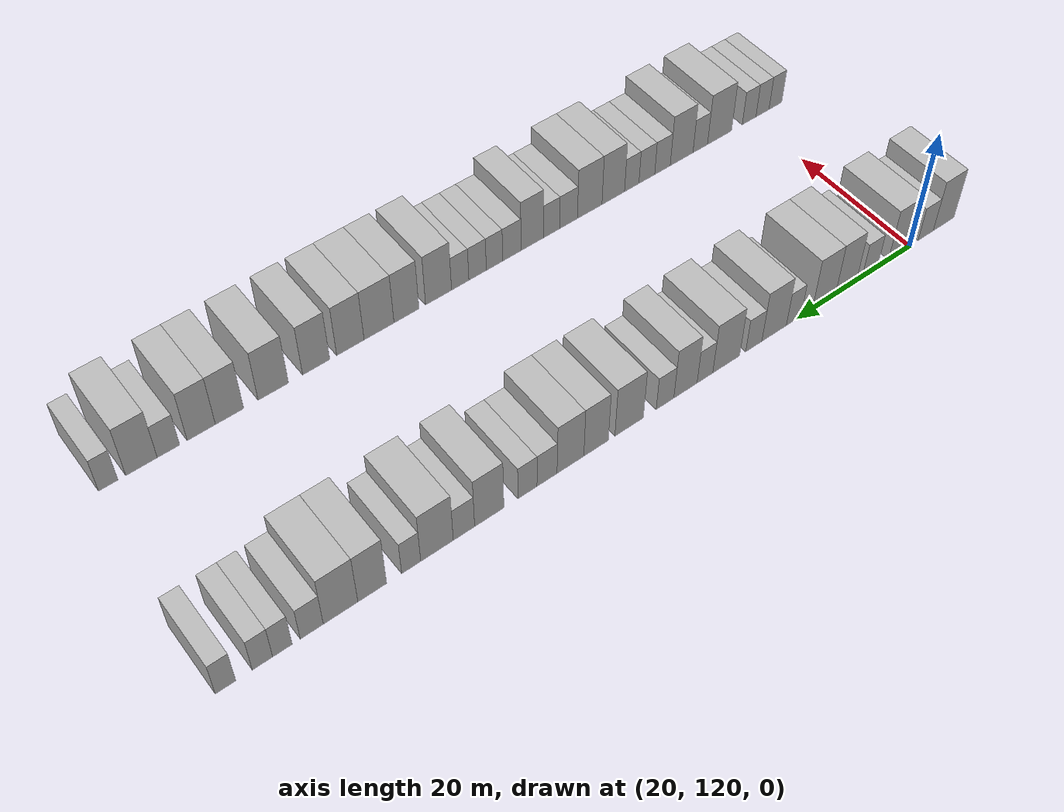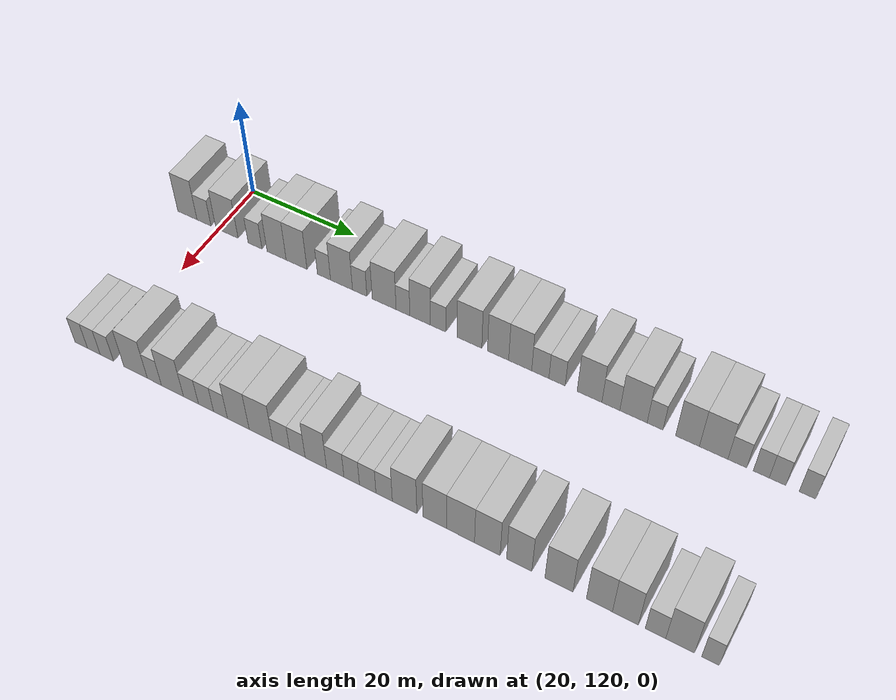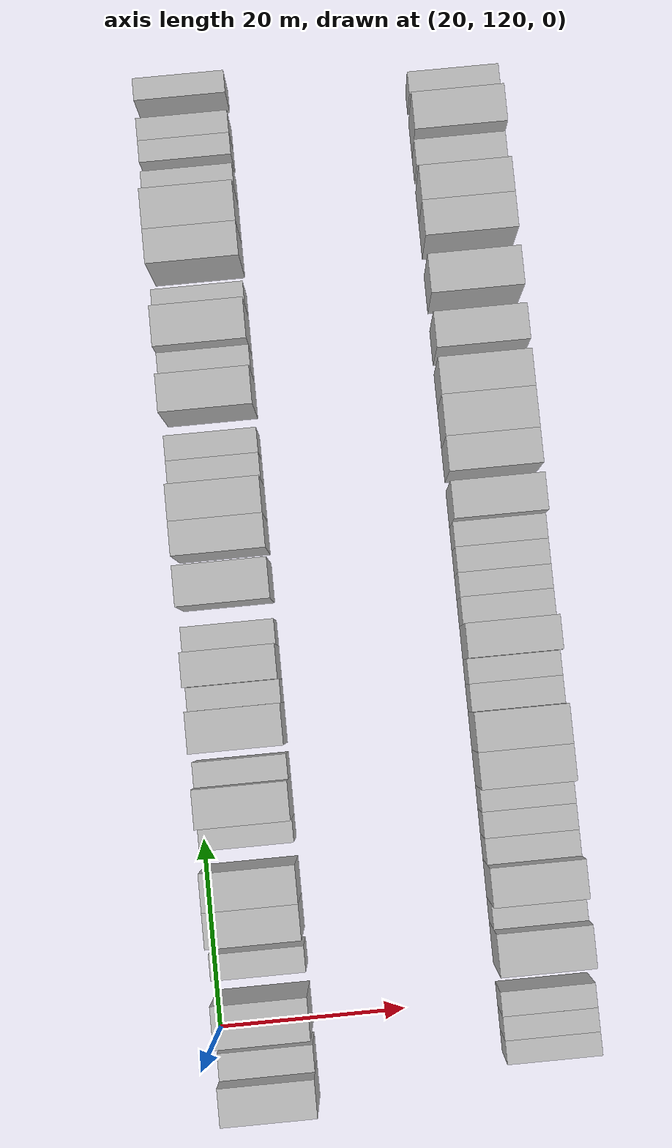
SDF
<sdf version="1.6">
 <world name="default">
  <model name="building_90">
   <static>1</static>
   <pose>25.0000 113.6498 0 0.000000 0.000000 0.000000</pose>
   <link name="link">
    <pose>0 0 4.50 0 0 0</pose>
    <collision name="collision"><geometry><box><size>10.0000 3.9279 9.0000</size></box></geometry></collision>
    <visual name="visual">
     <cast_shadows>0</cast_shadows>
     <geometry><box><size>10.0000 3.9279 9.0000</size></box></geometry>
     <material>
      <script>
       <uri>model://HANNAS_wall/materials/scripts</uri>
       <uri>model://HANNAS_wall/materials/textures</uri>
       <name>vrc/HANNAS_wall</name>
      </script>
     </material>
    </visual>
   </link>
  </model>
  <model name="building_91">
   <static>1</static>
   <pose>25.0000 117.0299 0 0.000000 0.000000 0.000000</pose>
   <link name="link">
    <pose>0 0 3.00 0 0 0</pose>
    <collision name="collision"><geometry><box><size>10.0000 2.8324 6.0000</size></box></geometry></collision>
    <visual name="visual">
     <cast_shadows>0</cast_shadows>
     <geometry><box><size>10.0000 2.8324 6.0000</size></box></geometry>
     <material>
      <script>
       <uri>model://HANNAS_wall/materials/scripts</uri>
       <uri>model://HANNAS_wall/materials/textures</uri>
       <name>vrc/HANNAS_wall</name>
      </script>
     </material>
    </visual>
   </link>
  </model>
  <model name="building_92">
   <static>1</static>
   <pose>25.0000 121.6636 0 0.000000 0.000000 0.000000</pose>
   <link name="link">
    <pose>0 0 4.50 0 0 0</pose>
    <collision name="collision"><geometry><box><size>10.0000 4.4349 9.0000</size></box></geometry></collision>
    <visual name="visual">
     <cast_shadows>0</cast_shadows>
     <geometry><box><size>10.0000 4.4349 9.0000</size></box></geometry>
     <material>
      <script>
       <uri>model://HANNAS_wall/materials/scripts</uri>
       <uri>model://HANNAS_wall/materials/textures</uri>
       <name>vrc/HANNAS_wall</name>
      </script>
     </material>
    </visual>
   </link>
  </model>
  <model name="building_93">
   <static>1</static>
   <pose>25.0000 127.2473 0 0.000000 0.000000 0.000000</pose>
   <link name="link">
    <pose>0 0 3.00 0 0 0</pose>
    <collision name="collision"><geometry><box><size>10.0000 2.7326 6.0000</size></box></geometry></collision>
    <visual name="visual">
     <cast_shadows>0</cast_shadows>
     <geometry><box><size>10.0000 2.7326 6.0000</size></box></geometry>
     <material>
      <script>
       <uri>model://HANNAS_wall/materials/scripts</uri>
       <uri>model://HANNAS_wall/materials/textures</uri>
       <name>vrc/HANNAS_wall</name>
      </script>
     </material>
    </visual>
   </link>
  </model>
  <model name="building_94">
   <static>1</static>
   <pose>25.0000 131.4762 0 0.000000 0.000000 0.000000</pose>
   <link name="link">
    <pose>0 0 4.50 0 0 0</pose>
    <collision name="collision"><geometry><box><size>10.0000 3.7252 9.0000</size></box></geometry></collision>
    <visual name="visual">
     <cast_shadows>0</cast_shadows>
     <geometry><box><size>10.0000 3.7252 9.0000</size></box></geometry>
     <material>
      <script>
       <uri>model://HANNAS_wall/materials/scripts</uri>
       <uri>model://HANNAS_wall/materials/textures</uri>
       <name>vrc/HANNAS_wall</name>
      </script>
     </material>
    </visual>
   </link>
  </model>
  <model name="building_95">
   <static>1</static>
   <pose>25.0000 135.3518 0 0.000000 0.000000 0.000000</pose>
   <link name="link">
    <pose>0 0 4.50 0 0 0</pose>
    <collision name="collision"><geometry><box><size>10.0000 4.0258 9.0000</size></box></geometry></collision>
    <visual name="visual">
     <cast_shadows>0</cast_shadows>
     <geometry><box><size>10.0000 4.0258 9.0000</size></box></geometry>
     <material>
      <script>
       <uri>model://HANNAS_wall/materials/scripts</uri>
       <uri>model://HANNAS_wall/materials/textures</uri>
       <name>vrc/HANNAS_wall</name>
      </script>
     </material>
    </visual>
   </link>
  </model>
  <model name="building_96">
   <static>1</static>
   <pose>25.0000 140.6121 0 0.000000 0.000000 0.000000</pose>
   <link name="link">
    <pose>0 0 3.00 0 0 0</pose>
    <collision name="collision"><geometry><box><size>10.0000 2.4949 6.0000</size></box></geometry></collision>
    <visual name="visual">
     <cast_shadows>0</cast_shadows>
     <geometry><box><size>10.0000 2.4949 6.0000</size></box></geometry>
     <material>
      <script>
       <uri>model://HANNAS_wall/materials/scripts</uri>
       <uri>model://HANNAS_wall/materials/textures</uri>
       <name>vrc/HANNAS_wall</name>
      </script>
     </material>
    </visual>
   </link>
  </model>
  <model name="building_97">
   <static>1</static>
   <pose>25.0000 143.9246 0 0.000000 0.000000 0.000000</pose>
   <link name="link">
    <pose>0 0 4.50 0 0 0</pose>
    <collision name="collision"><geometry><box><size>10.0000 4.1300 9.0000</size></box></geometry></collision>
    <visual name="visual">
     <cast_shadows>0</cast_shadows>
     <geometry><box><size>10.0000 4.1300 9.0000</size></box></geometry>
     <material>
      <script>
       <uri>model://HANNAS_wall/materials/scripts</uri>
       <uri>model://HANNAS_wall/materials/textures</uri>
       <name>vrc/HANNAS_wall</name>
      </script>
     </material>
    </visual>
   </link>
  </model>
  <model name="building_98">
   <static>1</static>
   <pose>25.0000 147.3326 0 0.000000 0.000000 0.000000</pose>
   <link name="link">
    <pose>0 0 3.00 0 0 0</pose>
    <collision name="collision"><geometry><box><size>10.0000 2.6861 6.0000</size></box></geometry></collision>
    <visual name="visual">
     <cast_shadows>0</cast_shadows>
     <geometry><box><size>10.0000 2.6861 6.0000</size></box></geometry>
     <material>
      <script>
       <uri>model://HANNAS_wall/materials/scripts</uri>
       <uri>model://HANNAS_wall/materials/textures</uri>
       <name>vrc/HANNAS_wall</name>
      </script>
     </material>
    </visual>
   </link>
  </model>
  <model name="building_99">
   <static>1</static>
   <pose>25.0000 151.8672 0 0.000000 0.000000 0.000000</pose>
   <link name="link">
    <pose>0 0 4.50 0 0 0</pose>
    <collision name="collision"><geometry><box><size>10.0000 4.3831 9.0000</size></box></geometry></collision>
    <visual name="visual">
     <cast_shadows>0</cast_shadows>
     <geometry><box><size>10.0000 4.3831 9.0000</size></box></geometry>
     <material>
      <script>
       <uri>model://HANNAS_wall/materials/scripts</uri>
       <uri>model://HANNAS_wall/materials/textures</uri>
       <name>vrc/HANNAS_wall</name>
      </script>
     </material>
    </visual>
   </link>
  </model>
  <model name="building_100">
   <static>1</static>
   <pose>25.0000 155.3198 0 0.000000 0.000000 0.000000</pose>
   <link name="link">
    <pose>0 0 3.00 0 0 0</pose>
    <collision name="collision"><geometry><box><size>10.0000 2.5220 6.0000</size></box></geometry></collision>
    <visual name="visual">
     <cast_shadows>0</cast_shadows>
     <geometry><box><size>10.0000 2.5220 6.0000</size></box></geometry>
     <material>
      <script>
       <uri>model://HANNAS_wall/materials/scripts</uri>
       <uri>model://HANNAS_wall/materials/textures</uri>
       <name>vrc/HANNAS_wall</name>
      </script>
     </material>
    </visual>
   </link>
  </model>
  <model name="building_101">
   <static>1</static>
   <pose>25.0000 158.4260 0 0.000000 0.000000 0.000000</pose>
   <link name="link">
    <pose>0 0 4.50 0 0 0</pose>
    <collision name="collision"><geometry><box><size>10.0000 3.6906 9.0000</size></box></geometry></collision>
    <visual name="visual">
     <cast_shadows>0</cast_shadows>
     <geometry><box><size>10.0000 3.6906 9.0000</size></box></geometry>
     <material>
      <script>
       <uri>model://HANNAS_wall/materials/scripts</uri>
       <uri>model://HANNAS_wall/materials/textures</uri>
       <name>vrc/HANNAS_wall</name>
      </script>
     </material>
    </visual>
   </link>
  </model>
  <model name="building_102">
   <static>1</static>
   <pose>25.0000 161.6524 0 0.000000 0.000000 0.000000</pose>
   <link name="link">
    <pose>0 0 3.00 0 0 0</pose>
    <collision name="collision"><geometry><box><size>10.0000 2.7621 6.0000</size></box></geometry></collision>
    <visual name="visual">
     <cast_shadows>0</cast_shadows>
     <geometry><box><size>10.0000 2.7621 6.0000</size></box></geometry>
     <material>
      <script>
       <uri>model://HANNAS_wall/materials/scripts</uri>
       <uri>model://HANNAS_wall/materials/textures</uri>
       <name>vrc/HANNAS_wall</name>
      </script>
     </material>
    </visual>
   </link>
  </model>
  <model name="building_103">
   <static>1</static>
   <pose>25.0000 167.2128 0 0.000000 0.000000 0.000000</pose>
   <link name="link">
    <pose>0 0 4.50 0 0 0</pose>
    <collision name="collision"><geometry><box><size>10.0000 4.3587 9.0000</size></box></geometry></collision>
    <visual name="visual">
     <cast_shadows>0</cast_shadows>
     <geometry><box><size>10.0000 4.3587 9.0000</size></box></geometry>
     <material>
      <script>
       <uri>model://HANNAS_wall/materials/scripts</uri>
       <uri>model://HANNAS_wall/materials/textures</uri>
       <name>vrc/HANNAS_wall</name>
      </script>
     </material>
    </visual>
   </link>
  </model>
  <model name="building_104">
   <static>1</static>
   <pose>25.0000 172.2282 0 0.000000 0.000000 0.000000</pose>
   <link name="link">
    <pose>0 0 4.50 0 0 0</pose>
    <collision name="collision"><geometry><box><size>10.0000 3.6721 9.0000</size></box></geometry></collision>
    <visual name="visual">
     <cast_shadows>0</cast_shadows>
     <geometry><box><size>10.0000 3.6721 9.0000</size></box></geometry>
     <material>
      <script>
       <uri>model://HANNAS_wall/materials/scripts</uri>
       <uri>model://HANNAS_wall/materials/textures</uri>
       <name>vrc/HANNAS_wall</name>
      </script>
     </material>
    </visual>
   </link>
  </model>
  <model name="building_105">
   <static>1</static>
   <pose>25.0000 176.0439 0 0.000000 0.000000 0.000000</pose>
   <link name="link">
    <pose>0 0 4.50 0 0 0</pose>
    <collision name="collision"><geometry><box><size>10.0000 3.9592 9.0000</size></box></geometry></collision>
    <visual name="visual">
     <cast_shadows>0</cast_shadows>
     <geometry><box><size>10.0000 3.9592 9.0000</size></box></geometry>
     <material>
      <script>
       <uri>model://HANNAS_wall/materials/scripts</uri>
       <uri>model://HANNAS_wall/materials/textures</uri>
       <name>vrc/HANNAS_wall</name>
      </script>
     </material>
    </visual>
   </link>
  </model>
  <model name="building_106">
   <static>1</static>
   <pose>25.0000 179.4803 0 0.000000 0.000000 0.000000</pose>
   <link name="link">
    <pose>0 0 3.00 0 0 0</pose>
    <collision name="collision"><geometry><box><size>10.0000 2.9138 6.0000</size></box></geometry></collision>
    <visual name="visual">
     <cast_shadows>0</cast_shadows>
     <geometry><box><size>10.0000 2.9138 6.0000</size></box></geometry>
     <material>
      <script>
       <uri>model://HANNAS_wall/materials/scripts</uri>
       <uri>model://HANNAS_wall/materials/textures</uri>
       <name>vrc/HANNAS_wall</name>
      </script>
     </material>
    </visual>
   </link>
  </model>
  <model name="building_107">
   <static>1</static>
   <pose>25.0000 182.3056 0 0.000000 0.000000 0.000000</pose>
   <link name="link">
    <pose>0 0 3.00 0 0 0</pose>
    <collision name="collision"><geometry><box><size>10.0000 2.7368 6.0000</size></box></geometry></collision>
    <visual name="visual">
     <cast_shadows>0</cast_shadows>
     <geometry><box><size>10.0000 2.7368 6.0000</size></box></geometry>
     <material>
      <script>
       <uri>model://HANNAS_wall/materials/scripts</uri>
       <uri>model://HANNAS_wall/materials/textures</uri>
       <name>vrc/HANNAS_wall</name>
      </script>
     </material>
    </visual>
   </link>
  </model>
  <model name="building_108">
   <static>1</static>
   <pose>25.0000 187.7296 0 0.000000 0.000000 0.000000</pose>
   <link name="link">
    <pose>0 0 4.50 0 0 0</pose>
    <collision name="collision"><geometry><box><size>10.0000 4.1111 9.0000</size></box></geometry></collision>
    <visual name="visual">
     <cast_shadows>0</cast_shadows>
     <geometry><box><size>10.0000 4.1111 9.0000</size></box></geometry>
     <material>
      <script>
       <uri>model://HANNAS_wall/materials/scripts</uri>
       <uri>model://HANNAS_wall/materials/textures</uri>
       <name>vrc/HANNAS_wall</name>
      </script>
     </material>
    </visual>
   </link>
  </model>
  <model name="building_109">
   <static>1</static>
   <pose>25.0000 191.2585 0 0.000000 0.000000 0.000000</pose>
   <link name="link">
    <pose>0 0 3.00 0 0 0</pose>
    <collision name="collision"><geometry><box><size>10.0000 2.9467 6.0000</size></box></geometry></collision>
    <visual name="visual">
     <cast_shadows>0</cast_shadows>
     <geometry><box><size>10.0000 2.9467 6.0000</size></box></geometry>
     <material>
      <script>
       <uri>model://HANNAS_wall/materials/scripts</uri>
       <uri>model://HANNAS_wall/materials/textures</uri>
       <name>vrc/HANNAS_wall</name>
      </script>
     </material>
    </visual>
   </link>
  </model>
  <model name="building_110">
   <static>1</static>
   <pose>25.0000 194.9466 0 0.000000 0.000000 0.000000</pose>
   <link name="link">
    <pose>0 0 4.50 0 0 0</pose>
    <collision name="collision"><geometry><box><size>10.0000 4.4295 9.0000</size></box></geometry></collision>
    <visual name="visual">
     <cast_shadows>0</cast_shadows>
     <geometry><box><size>10.0000 4.4295 9.0000</size></box></geometry>
     <material>
      <script>
       <uri>model://HANNAS_wall/materials/scripts</uri>
       <uri>model://HANNAS_wall/materials/textures</uri>
       <name>vrc/HANNAS_wall</name>
      </script>
     </material>
    </visual>
   </link>
  </model>
  <model name="building_111">
   <static>1</static>
   <pose>25.0000 198.4334 0 0.000000 0.000000 0.000000</pose>
   <link name="link">
    <pose>0 0 3.00 0 0 0</pose>
    <collision name="collision"><geometry><box><size>10.0000 2.5440 6.0000</size></box></geometry></collision>
    <visual name="visual">
     <cast_shadows>0</cast_shadows>
     <geometry><box><size>10.0000 2.5440 6.0000</size></box></geometry>
     <material>
      <script>
       <uri>model://HANNAS_wall/materials/scripts</uri>
       <uri>model://HANNAS_wall/materials/textures</uri>
       <name>vrc/HANNAS_wall</name>
      </script>
     </material>
    </visual>
   </link>
  </model>
  <model name="building_112">
   <static>1</static>
   <pose>25.0000 203.5893 0 0.000000 0.000000 0.000000</pose>
   <link name="link">
    <pose>0 0 4.50 0 0 0</pose>
    <collision name="collision"><geometry><box><size>10.0000 3.7680 9.0000</size></box></geometry></collision>
    <visual name="visual">
     <cast_shadows>0</cast_shadows>
     <geometry><box><size>10.0000 3.7680 9.0000</size></box></geometry>
     <material>
      <script>
       <uri>model://HANNAS_wall/materials/scripts</uri>
       <uri>model://HANNAS_wall/materials/textures</uri>
       <name>vrc/HANNAS_wall</name>
      </script>
     </material>
    </visual>
   </link>
  </model>
  <model name="building_113">
   <static>1</static>
   <pose>25.0000 207.6919 0 0.000000 0.000000 0.000000</pose>
   <link name="link">
    <pose>0 0 4.50 0 0 0</pose>
    <collision name="collision"><geometry><box><size>10.0000 4.4371 9.0000</size></box></geometry></collision>
    <visual name="visual">
     <cast_shadows>0</cast_shadows>
     <geometry><box><size>10.0000 4.4371 9.0000</size></box></geometry>
     <material>
      <script>
       <uri>model://HANNAS_wall/materials/scripts</uri>
       <uri>model://HANNAS_wall/materials/textures</uri>
       <name>vrc/HANNAS_wall</name>
      </script>
     </material>
    </visual>
   </link>
  </model>
  <model name="building_114">
   <static>1</static>
   <pose>25.0000 211.3695 0 0.000000 0.000000 0.000000</pose>
   <link name="link">
    <pose>0 0 3.00 0 0 0</pose>
    <collision name="collision"><geometry><box><size>10.0000 2.9181 6.0000</size></box></geometry></collision>
    <visual name="visual">
     <cast_shadows>0</cast_shadows>
     <geometry><box><size>10.0000 2.9181 6.0000</size></box></geometry>
     <material>
      <script>
       <uri>model://HANNAS_wall/materials/scripts</uri>
       <uri>model://HANNAS_wall/materials/textures</uri>
       <name>vrc/HANNAS_wall</name>
      </script>
     </material>
    </visual>
   </link>
  </model>
  <model name="building_115">
   <static>1</static>
   <pose>25.0000 215.0455 0 0.000000 0.000000 0.000000</pose>
   <link name="link">
    <pose>0 0 3.00 0 0 0</pose>
    <collision name="collision"><geometry><box><size>10.0000 2.4340 6.0000</size></box></geometry></collision>
    <visual name="visual">
     <cast_shadows>0</cast_shadows>
     <geometry><box><size>10.0000 2.4340 6.0000</size></box></geometry>
     <material>
      <script>
       <uri>model://HANNAS_wall/materials/scripts</uri>
       <uri>model://HANNAS_wall/materials/textures</uri>
       <name>vrc/HANNAS_wall</name>
      </script>
     </material>
    </visual>
   </link>
  </model>
  <model name="building_116">
   <static>1</static>
   <pose>25.0000 217.5165 0 0.000000 0.000000 0.000000</pose>
   <link name="link">
    <pose>0 0 3.00 0 0 0</pose>
    <collision name="collision"><geometry><box><size>10.0000 2.5080 6.0000</size></box></geometry></collision>
    <visual name="visual">
     <cast_shadows>0</cast_shadows>
     <geometry><box><size>10.0000 2.5080 6.0000</size></box></geometry>
     <material>
      <script>
       <uri>model://HANNAS_wall/materials/scripts</uri>
       <uri>model://HANNAS_wall/materials/textures</uri>
       <name>vrc/HANNAS_wall</name>
      </script>
     </material>
    </visual>
   </link>
  </model>
  <model name="building_117">
   <static>1</static>
   <pose>25.0000 222.0105 0 0.000000 0.000000 0.000000</pose>
   <link name="link">
    <pose>0 0 3.00 0 0 0</pose>
    <collision name="collision"><geometry><box><size>10.0000 2.4799 6.0000</size></box></geometry></collision>
    <visual name="visual">
     <cast_shadows>0</cast_shadows>
     <geometry><box><size>10.0000 2.4799 6.0000</size></box></geometry>
     <material>
      <script>
       <uri>model://HANNAS_wall/materials/scripts</uri>
       <uri>model://HANNAS_wall/materials/textures</uri>
       <name>vrc/HANNAS_wall</name>
      </script>
     </material>
    </visual>
   </link>
  </model>
  <model name="building_200">
   <static>1</static>
   <pose>55.0000 115.6530 0 0.000000 0.000000 0.000000</pose>
   <link name="link">
    <pose>0 0 3.00 0 0 0</pose>
    <collision name="collision"><geometry><box><size>10.0000 2.4391 6.0000</size></box></geometry></collision>
    <visual name="visual">
     <cast_shadows>0</cast_shadows>
     <geometry><box><size>10.0000 2.4391 6.0000</size></box></geometry>
     <material>
      <script>
       <uri>model://HANNAS_wall/materials/scripts</uri>
       <uri>model://HANNAS_wall/materials/textures</uri>
       <name>vrc/HANNAS_wall</name>
      </script>
     </material>
    </visual>
   </link>
  </model>
  <model name="building_201">
   <static>1</static>
   <pose>55.0000 118.1100 0 0.000000 0.000000 0.000000</pose>
   <link name="link">
    <pose>0 0 3.00 0 0 0</pose>
    <collision name="collision"><geometry><box><size>10.0000 2.4749 6.0000</size></box></geometry></collision>
    <visual name="visual">
     <cast_shadows>0</cast_shadows>
     <geometry><box><size>10.0000 2.4749 6.0000</size></box></geometry>
     <material>
      <script>
       <uri>model://HANNAS_wall/materials/scripts</uri>
       <uri>model://HANNAS_wall/materials/textures</uri>
       <name>vrc/HANNAS_wall</name>
      </script>
     </material>
    </visual>
   </link>
  </model>
  <model name="building_202">
   <static>1</static>
   <pose>55.0000 120.6247 0 0.000000 0.000000 0.000000</pose>
   <link name="link">
    <pose>0 0 3.00 0 0 0</pose>
    <collision name="collision"><geometry><box><size>10.0000 2.5544 6.0000</size></box></geometry></collision>
    <visual name="visual">
     <cast_shadows>0</cast_shadows>
     <geometry><box><size>10.0000 2.5544 6.0000</size></box></geometry>
     <material>
      <script>
       <uri>model://HANNAS_wall/materials/scripts</uri>
       <uri>model://HANNAS_wall/materials/textures</uri>
       <name>vrc/HANNAS_wall</name>
      </script>
     </material>
    </visual>
   </link>
  </model>
  <model name="building_203">
   <static>1</static>
   <pose>55.0000 126.1209 0 0.000000 0.000000 0.000000</pose>
   <link name="link">
    <pose>0 0 4.50 0 0 0</pose>
    <collision name="collision"><geometry><box><size>10.0000 4.4381 9.0000</size></box></geometry></collision>
    <visual name="visual">
     <cast_shadows>0</cast_shadows>
     <geometry><box><size>10.0000 4.4381 9.0000</size></box></geometry>
     <material>
      <script>
       <uri>model://HANNAS_wall/materials/scripts</uri>
       <uri>model://HANNAS_wall/materials/textures</uri>
       <name>vrc/HANNAS_wall</name>
      </script>
     </material>
    </visual>
   </link>
  </model>
  <model name="building_204">
   <static>1</static>
   <pose>55.0000 129.6592 0 0.000000 0.000000 0.000000</pose>
   <link name="link">
    <pose>0 0 3.00 0 0 0</pose>
    <collision name="collision"><geometry><box><size>10.0000 2.6384 6.0000</size></box></geometry></collision>
    <visual name="visual">
     <cast_shadows>0</cast_shadows>
     <geometry><box><size>10.0000 2.6384 6.0000</size></box></geometry>
     <material>
      <script>
       <uri>model://HANNAS_wall/materials/scripts</uri>
       <uri>model://HANNAS_wall/materials/textures</uri>
       <name>vrc/HANNAS_wall</name>
      </script>
     </material>
    </visual>
   </link>
  </model>
  <model name="building_205">
   <static>1</static>
   <pose>55.0000 133.0231 0 0.000000 0.000000 0.000000</pose>
   <link name="link">
    <pose>0 0 4.50 0 0 0</pose>
    <collision name="collision"><geometry><box><size>10.0000 4.0893 9.0000</size></box></geometry></collision>
    <visual name="visual">
     <cast_shadows>0</cast_shadows>
     <geometry><box><size>10.0000 4.0893 9.0000</size></box></geometry>
     <material>
      <script>
       <uri>model://HANNAS_wall/materials/scripts</uri>
       <uri>model://HANNAS_wall/materials/textures</uri>
       <name>vrc/HANNAS_wall</name>
      </script>
     </material>
    </visual>
   </link>
  </model>
  <model name="building_206">
   <static>1</static>
   <pose>55.0000 136.4451 0 0.000000 0.000000 0.000000</pose>
   <link name="link">
    <pose>0 0 3.00 0 0 0</pose>
    <collision name="collision"><geometry><box><size>10.0000 2.7548 6.0000</size></box></geometry></collision>
    <visual name="visual">
     <cast_shadows>0</cast_shadows>
     <geometry><box><size>10.0000 2.7548 6.0000</size></box></geometry>
     <material>
      <script>
       <uri>model://HANNAS_wall/materials/scripts</uri>
       <uri>model://HANNAS_wall/materials/textures</uri>
       <name>vrc/HANNAS_wall</name>
      </script>
     </material>
    </visual>
   </link>
  </model>
  <model name="building_207">
   <static>1</static>
   <pose>55.0000 139.2066 0 0.000000 0.000000 0.000000</pose>
   <link name="link">
    <pose>0 0 3.00 0 0 0</pose>
    <collision name="collision"><geometry><box><size>10.0000 2.7681 6.0000</size></box></geometry></collision>
    <visual name="visual">
     <cast_shadows>0</cast_shadows>
     <geometry><box><size>10.0000 2.7681 6.0000</size></box></geometry>
     <material>
      <script>
       <uri>model://HANNAS_wall/materials/scripts</uri>
       <uri>model://HANNAS_wall/materials/textures</uri>
       <name>vrc/HANNAS_wall</name>
      </script>
     </material>
    </visual>
   </link>
  </model>
  <model name="building_208">
   <static>1</static>
   <pose>55.0000 141.8433 0 0.000000 0.000000 0.000000</pose>
   <link name="link">
    <pose>0 0 3.00 0 0 0</pose>
    <collision name="collision"><geometry><box><size>10.0000 2.5054 6.0000</size></box></geometry></collision>
    <visual name="visual">
     <cast_shadows>0</cast_shadows>
     <geometry><box><size>10.0000 2.5054 6.0000</size></box></geometry>
     <material>
      <script>
       <uri>model://HANNAS_wall/materials/scripts</uri>
       <uri>model://HANNAS_wall/materials/textures</uri>
       <name>vrc/HANNAS_wall</name>
      </script>
     </material>
    </visual>
   </link>
  </model>
  <model name="building_209">
   <static>1</static>
   <pose>55.0000 145.0355 0 0.000000 0.000000 0.000000</pose>
   <link name="link">
    <pose>0 0 4.50 0 0 0</pose>
    <collision name="collision"><geometry><box><size>10.0000 3.8789 9.0000</size></box></geometry></collision>
    <visual name="visual">
     <cast_shadows>0</cast_shadows>
     <geometry><box><size>10.0000 3.8789 9.0000</size></box></geometry>
     <material>
      <script>
       <uri>model://HANNAS_wall/materials/scripts</uri>
       <uri>model://HANNAS_wall/materials/textures</uri>
       <name>vrc/HANNAS_wall</name>
      </script>
     </material>
    </visual>
   </link>
  </model>
  <model name="building_210">
   <static>1</static>
   <pose>55.0000 149.0594 0 0.000000 0.000000 0.000000</pose>
   <link name="link">
    <pose>0 0 4.50 0 0 0</pose>
    <collision name="collision"><geometry><box><size>10.0000 4.1690 9.0000</size></box></geometry></collision>
    <visual name="visual">
     <cast_shadows>0</cast_shadows>
     <geometry><box><size>10.0000 4.1690 9.0000</size></box></geometry>
     <material>
      <script>
       <uri>model://HANNAS_wall/materials/scripts</uri>
       <uri>model://HANNAS_wall/materials/textures</uri>
       <name>vrc/HANNAS_wall</name>
      </script>
     </material>
    </visual>
   </link>
  </model>
  <model name="building_211">
   <static>1</static>
   <pose>55.0000 152.6315 0 0.000000 0.000000 0.000000</pose>
   <link name="link">
    <pose>0 0 3.00 0 0 0</pose>
    <collision name="collision"><geometry><box><size>10.0000 2.9752 6.0000</size></box></geometry></collision>
    <visual name="visual">
     <cast_shadows>0</cast_shadows>
     <geometry><box><size>10.0000 2.9752 6.0000</size></box></geometry>
     <material>
      <script>
       <uri>model://HANNAS_wall/materials/scripts</uri>
       <uri>model://HANNAS_wall/materials/textures</uri>
       <name>vrc/HANNAS_wall</name>
      </script>
     </material>
    </visual>
   </link>
  </model>
  <model name="building_212">
   <static>1</static>
   <pose>55.0000 155.4512 0 0.000000 0.000000 0.000000</pose>
   <link name="link">
    <pose>0 0 3.00 0 0 0</pose>
    <collision name="collision"><geometry><box><size>10.0000 2.6643 6.0000</size></box></geometry></collision>
    <visual name="visual">
     <cast_shadows>0</cast_shadows>
     <geometry><box><size>10.0000 2.6643 6.0000</size></box></geometry>
     <material>
      <script>
       <uri>model://HANNAS_wall/materials/scripts</uri>
       <uri>model://HANNAS_wall/materials/textures</uri>
       <name>vrc/HANNAS_wall</name>
      </script>
     </material>
    </visual>
   </link>
  </model>
  <model name="building_213">
   <static>1</static>
   <pose>55.0000 158.6186 0 0.000000 0.000000 0.000000</pose>
   <link name="link">
    <pose>0 0 4.50 0 0 0</pose>
    <collision name="collision"><geometry><box><size>10.0000 3.6704 9.0000</size></box></geometry></collision>
    <visual name="visual">
     <cast_shadows>0</cast_shadows>
     <geometry><box><size>10.0000 3.6704 9.0000</size></box></geometry>
     <material>
      <script>
       <uri>model://HANNAS_wall/materials/scripts</uri>
       <uri>model://HANNAS_wall/materials/textures</uri>
       <name>vrc/HANNAS_wall</name>
      </script>
     </material>
    </visual>
   </link>
  </model>
  <model name="building_214">
   <static>1</static>
   <pose>55.0000 161.9301 0 0.000000 0.000000 0.000000</pose>
   <link name="link">
    <pose>0 0 3.00 0 0 0</pose>
    <collision name="collision"><geometry><box><size>10.0000 2.9526 6.0000</size></box></geometry></collision>
    <visual name="visual">
     <cast_shadows>0</cast_shadows>
     <geometry><box><size>10.0000 2.9526 6.0000</size></box></geometry>
     <material>
      <script>
       <uri>model://HANNAS_wall/materials/scripts</uri>
       <uri>model://HANNAS_wall/materials/textures</uri>
       <name>vrc/HANNAS_wall</name>
      </script>
     </material>
    </visual>
   </link>
  </model>
  <model name="building_215">
   <static>1</static>
   <pose>55.0000 164.7128 0 0.000000 0.000000 0.000000</pose>
   <link name="link">
    <pose>0 0 3.00 0 0 0</pose>
    <collision name="collision"><geometry><box><size>10.0000 2.6130 6.0000</size></box></geometry></collision>
    <visual name="visual">
     <cast_shadows>0</cast_shadows>
     <geometry><box><size>10.0000 2.6130 6.0000</size></box></geometry>
     <material>
      <script>
       <uri>model://HANNAS_wall/materials/scripts</uri>
       <uri>model://HANNAS_wall/materials/textures</uri>
       <name>vrc/HANNAS_wall</name>
      </script>
     </material>
    </visual>
   </link>
  </model>
  <model name="building_216">
   <static>1</static>
   <pose>55.0000 167.3978 0 0.000000 0.000000 0.000000</pose>
   <link name="link">
    <pose>0 0 3.00 0 0 0</pose>
    <collision name="collision"><geometry><box><size>10.0000 2.7570 6.0000</size></box></geometry></collision>
    <visual name="visual">
     <cast_shadows>0</cast_shadows>
     <geometry><box><size>10.0000 2.7570 6.0000</size></box></geometry>
     <material>
      <script>
       <uri>model://HANNAS_wall/materials/scripts</uri>
       <uri>model://HANNAS_wall/materials/textures</uri>
       <name>vrc/HANNAS_wall</name>
      </script>
     </material>
    </visual>
   </link>
  </model>
  <model name="building_217">
   <static>1</static>
   <pose>55.0000 170.1302 0 0.000000 0.000000 0.000000</pose>
   <link name="link">
    <pose>0 0 3.00 0 0 0</pose>
    <collision name="collision"><geometry><box><size>10.0000 2.7078 6.0000</size></box></geometry></collision>
    <visual name="visual">
     <cast_shadows>0</cast_shadows>
     <geometry><box><size>10.0000 2.7078 6.0000</size></box></geometry>
     <material>
      <script>
       <uri>model://HANNAS_wall/materials/scripts</uri>
       <uri>model://HANNAS_wall/materials/textures</uri>
       <name>vrc/HANNAS_wall</name>
      </script>
     </material>
    </visual>
   </link>
  </model>
  <model name="building_218">
   <static>1</static>
   <pose>55.0000 173.4926 0 0.000000 0.000000 0.000000</pose>
   <link name="link">
    <pose>0 0 4.50 0 0 0</pose>
    <collision name="collision"><geometry><box><size>10.0000 4.0169 9.0000</size></box></geometry></collision>
    <visual name="visual">
     <cast_shadows>0</cast_shadows>
     <geometry><box><size>10.0000 4.0169 9.0000</size></box></geometry>
     <material>
      <script>
       <uri>model://HANNAS_wall/materials/scripts</uri>
       <uri>model://HANNAS_wall/materials/textures</uri>
       <name>vrc/HANNAS_wall</name>
      </script>
     </material>
    </visual>
   </link>
  </model>
  <model name="building_219">
   <static>1</static>
   <pose>55.0000 178.3903 0 0.000000 0.000000 0.000000</pose>
   <link name="link">
    <pose>0 0 4.50 0 0 0</pose>
    <collision name="collision"><geometry><box><size>10.0000 3.7786 9.0000</size></box></geometry></collision>
    <visual name="visual">
     <cast_shadows>0</cast_shadows>
     <geometry><box><size>10.0000 3.7786 9.0000</size></box></geometry>
     <material>
      <script>
       <uri>model://HANNAS_wall/materials/scripts</uri>
       <uri>model://HANNAS_wall/materials/textures</uri>
       <name>vrc/HANNAS_wall</name>
      </script>
     </material>
    </visual>
   </link>
  </model>
  <model name="building_220">
   <static>1</static>
   <pose>55.0000 182.5090 0 0.000000 0.000000 0.000000</pose>
   <link name="link">
    <pose>0 0 4.50 0 0 0</pose>
    <collision name="collision"><geometry><box><size>10.0000 4.4588 9.0000</size></box></geometry></collision>
    <visual name="visual">
     <cast_shadows>0</cast_shadows>
     <geometry><box><size>10.0000 4.4588 9.0000</size></box></geometry>
     <material>
      <script>
       <uri>model://HANNAS_wall/materials/scripts</uri>
       <uri>model://HANNAS_wall/materials/textures</uri>
       <name>vrc/HANNAS_wall</name>
      </script>
     </material>
    </visual>
   </link>
  </model>
  <model name="building_221">
   <static>1</static>
   <pose>55.0000 186.7479 0 0.000000 0.000000 0.000000</pose>
   <link name="link">
    <pose>0 0 4.50 0 0 0</pose>
    <collision name="collision"><geometry><box><size>10.0000 4.0191 9.0000</size></box></geometry></collision>
    <visual name="visual">
     <cast_shadows>0</cast_shadows>
     <geometry><box><size>10.0000 4.0191 9.0000</size></box></geometry>
     <material>
      <script>
       <uri>model://HANNAS_wall/materials/scripts</uri>
       <uri>model://HANNAS_wall/materials/textures</uri>
       <name>vrc/HANNAS_wall</name>
      </script>
     </material>
    </visual>
   </link>
  </model>
  <model name="building_222">
   <static>1</static>
   <pose>55.0000 191.7070 0 0.000000 0.000000 0.000000</pose>
   <link name="link">
    <pose>0 0 4.50 0 0 0</pose>
    <collision name="collision"><geometry><box><size>10.0000 3.8991 9.0000</size></box></geometry></collision>
    <visual name="visual">
     <cast_shadows>0</cast_shadows>
     <geometry><box><size>10.0000 3.8991 9.0000</size></box></geometry>
     <material>
      <script>
       <uri>model://HANNAS_wall/materials/scripts</uri>
       <uri>model://HANNAS_wall/materials/textures</uri>
       <name>vrc/HANNAS_wall</name>
      </script>
     </material>
    </visual>
   </link>
  </model>
  <model name="building_223">
   <static>1</static>
   <pose>55.0000 197.7840 0 0.000000 0.000000 0.000000</pose>
   <link name="link">
    <pose>0 0 4.50 0 0 0</pose>
    <collision name="collision"><geometry><box><size>10.0000 4.2550 9.0000</size></box></geometry></collision>
    <visual name="visual">
     <cast_shadows>0</cast_shadows>
     <geometry><box><size>10.0000 4.2550 9.0000</size></box></geometry>
     <material>
      <script>
       <uri>model://HANNAS_wall/materials/scripts</uri>
       <uri>model://HANNAS_wall/materials/textures</uri>
       <name>vrc/HANNAS_wall</name>
      </script>
     </material>
    </visual>
   </link>
  </model>
  <model name="building_224">
   <static>1</static>
   <pose>55.0000 203.8440 0 0.000000 0.000000 0.000000</pose>
   <link name="link">
    <pose>0 0 4.50 0 0 0</pose>
    <collision name="collision"><geometry><box><size>10.0000 3.8650 9.0000</size></box></geometry></collision>
    <visual name="visual">
     <cast_shadows>0</cast_shadows>
     <geometry><box><size>10.0000 3.8650 9.0000</size></box></geometry>
     <material>
      <script>
       <uri>model://HANNAS_wall/materials/scripts</uri>
       <uri>model://HANNAS_wall/materials/textures</uri>
       <name>vrc/HANNAS_wall</name>
      </script>
     </material>
    </visual>
   </link>
  </model>
  <model name="building_225">
   <static>1</static>
   <pose>55.0000 207.6744 0 0.000000 0.000000 0.000000</pose>
   <link name="link">
    <pose>0 0 4.50 0 0 0</pose>
    <collision name="collision"><geometry><box><size>10.0000 3.7958 9.0000</size></box></geometry></collision>
    <visual name="visual">
     <cast_shadows>0</cast_shadows>
     <geometry><box><size>10.0000 3.7958 9.0000</size></box></geometry>
     <material>
      <script>
       <uri>model://HANNAS_wall/materials/scripts</uri>
       <uri>model://HANNAS_wall/materials/textures</uri>
       <name>vrc/HANNAS_wall</name>
      </script>
     </material>
    </visual>
   </link>
  </model>
  <model name="building_226">
   <static>1</static>
   <pose>55.0000 212.0504 0 0.000000 0.000000 0.000000</pose>
   <link name="link">
    <pose>0 0 3.00 0 0 0</pose>
    <collision name="collision"><geometry><box><size>10.0000 2.9562 6.0000</size></box></geometry></collision>
    <visual name="visual">
     <cast_shadows>0</cast_shadows>
     <geometry><box><size>10.0000 2.9562 6.0000</size></box></geometry>
     <material>
      <script>
       <uri>model://HANNAS_wall/materials/scripts</uri>
       <uri>model://HANNAS_wall/materials/textures</uri>
       <name>vrc/HANNAS_wall</name>
      </script>
     </material>
    </visual>
   </link>
  </model>
  <model name="building_227">
   <static>1</static>
   <pose>55.0000 215.5792 0 0.000000 0.000000 0.000000</pose>
   <link name="link">
    <pose>0 0 4.50 0 0 0</pose>
    <collision name="collision"><geometry><box><size>10.0000 4.1014 9.0000</size></box></geometry></collision>
    <visual name="visual">
     <cast_shadows>0</cast_shadows>
     <geometry><box><size>10.0000 4.1014 9.0000</size></box></geometry>
     <material>
      <script>
       <uri>model://HANNAS_wall/materials/scripts</uri>
       <uri>model://HANNAS_wall/materials/textures</uri>
       <name>vrc/HANNAS_wall</name>
      </script>
     </material>
    </visual>
   </link>
  </model>
  <model name="building_228">
   <static>1</static>
   <pose>55.0000 219.8760 0 0.000000 0.000000 0.000000</pose>
   <link name="link">
    <pose>0 0 3.00 0 0 0</pose>
    <collision name="collision"><geometry><box><size>10.0000 2.4921 6.0000</size></box></geometry></collision>
    <visual name="visual">
     <cast_shadows>0</cast_shadows>
     <geometry><box><size>10.0000 2.4921 6.0000</size></box></geometry>
     <material>
      <script>
       <uri>model://HANNAS_wall/materials/scripts</uri>
       <uri>model://HANNAS_wall/materials/textures</uri>
       <name>vrc/HANNAS_wall</name>
      </script>
     </material>
    </visual>
   </link>
  </model>
 </world>
</sdf>
